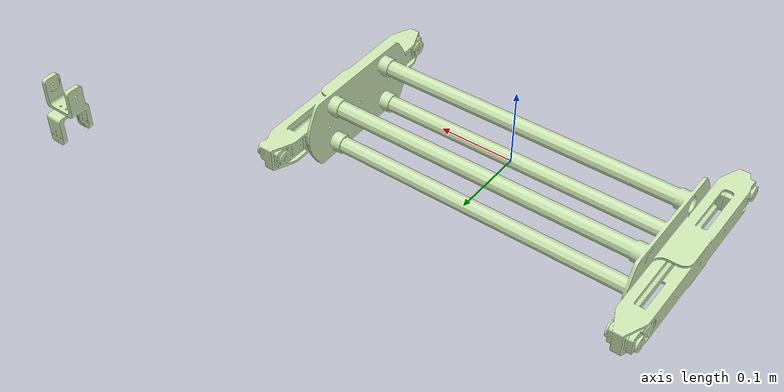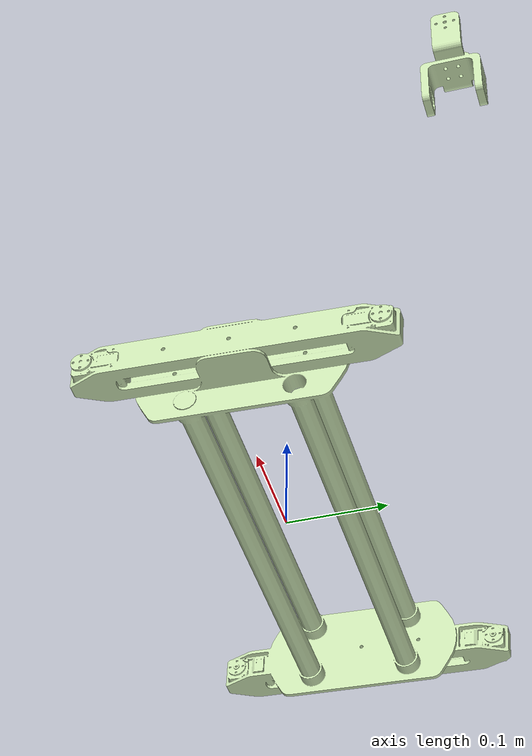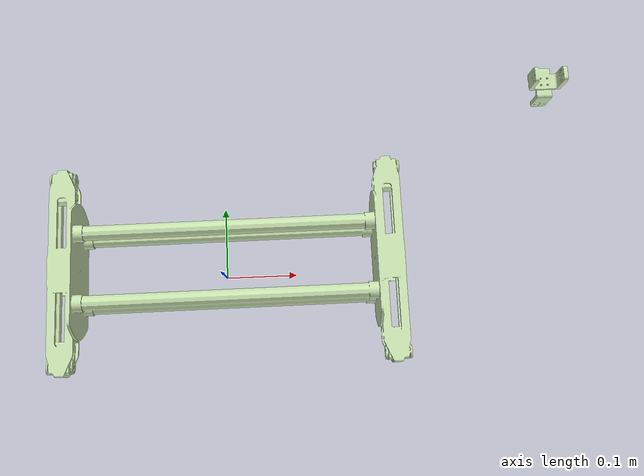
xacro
<?xml version="1.0" encoding="utf-8"?>
<robot xmlns:xacro="http://www.ros.org/wiki/xacro" name="cerbrus">

  <xacro:macro name="links" params="name mass ix iy iz mesh_file">

    <link name="${name}">
      <inertial>
        <origin xyz="0.023501 -0.00012609 -0.029" rpy="0.0 0.0 0.0"/>
        <mass value="${mass}"/>
        <inertia ixx="${ix}" ixy="0.0" ixz="0.0" iyy="${iy}" iyz="0.0" izz="${iz}"/>
      </inertial>
      <visual name="">
        <origin xyz="0.0 0.02 0.0" rpy="0.0 0.0 0.0"/>
        <geometry>
          <mesh filename="package://cerbrus_description/meshes/${mesh_file}" scale="1.0 1.0 1.0"/>
        </geometry>
        <material name="">
          <color rgba="0.8 0.9 0.7 1.0"/>
          <texture filename=""/>
        </material>
      </visual>
      <collision>
        <origin xyz="0.0 0.02 0.0" rpy="0.0 0.0 0.0"/>
        <geometry>
          <mesh filename="package://cerbrus_description/meshes/${mesh_file}" scale="1.0 1.0 1.0"/>
        </geometry>
      </collision>
    </link>

  </xacro:macro>

  <xacro:links name="base_link" mass="1.22" ix="0.0021324" iy="0.0090463" iz="0.01083" mesh_file="base_link.STL"/>
  <xacro:links name="front_left_b_link" mass="0.026" ix="9.0149E-06" iy="9.0149E-06" iz="1.0208E-05" mesh_file="front_left_b_link.STL"/>

  <joint name="front_left_b_joint" type="revolute">
    <origin xyz="0.48015 0.27243 -0.010182" rpy="0.0 0.0 0.0"/>
    <parent link="base_link"/>
    <child link="front_left_b_link"/>
    <axis xyz="1.0 0.0 0.0"/>
    <limit lower="-1.57" upper="1.57" effort="100.0" velocity="4.5"/>
  </joint>

</robot>
